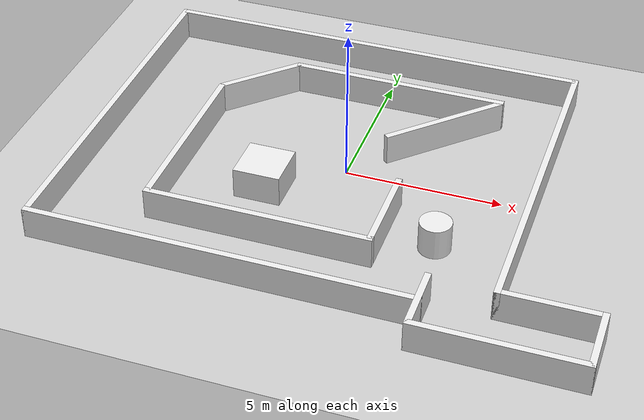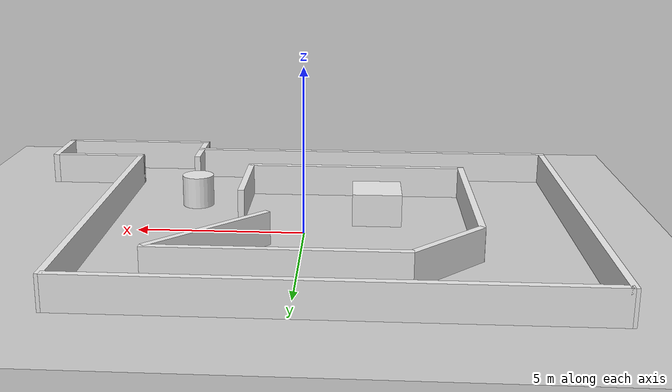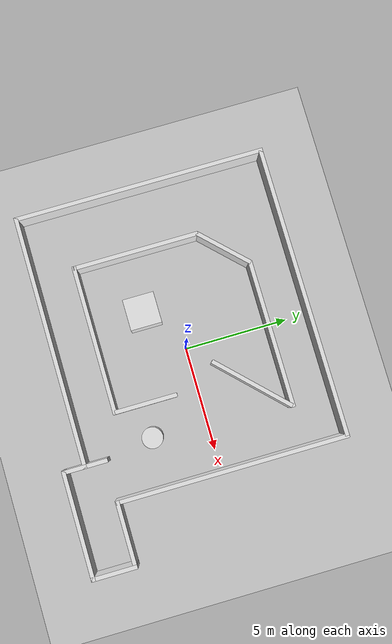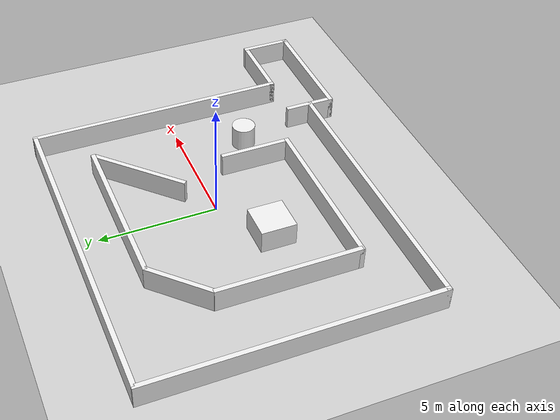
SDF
<sdf version="1.6">
 <world name="default">
  <scene><ambient>0.4 0.4 0.4 1</ambient><background>0.7 0.7 0.7 1</background><shadows>1</shadows></scene>
  <light name="sun" type="directional">
   <pose>0 0 10 0 -0 0</pose>
   <diffuse>0.8 0.8 0.8 1</diffuse>
   <specular>0.2 0.2 0.2 1</specular>
   <attenuation>
    <range>1000</range>
    <constant>0.9</constant>
    <linear>0.01</linear>
    <quadratic>0.001</quadratic>
   </attenuation>
   <direction>-0.5 0.1 -0.9</direction>
  </light>
  <model name="ground_plane">
   <static>1</static>
   <link name="link">
    <collision name="collision">
     <geometry><plane><normal>0 0 1</normal><size>100 100</size></plane></geometry>
     <surface>
      <contact><collide_bitmask>65535</collide_bitmask></contact>
      <friction><ode><mu>100</mu><mu2>50</mu2></ode></friction>
     </surface>
    </collision>
    <visual name="visual">
     <cast_shadows>0</cast_shadows>
     <geometry><plane><normal>0 0 1</normal><size>100 100</size></plane></geometry>
     <material>
      <script><uri>file://media/materials/scripts/gazebo.material</uri><name>Gazebo/Grey</name></script>
     </material>
    </visual>
   </link>
  </model>
  <physics name="default_physics" default="0" type="ode">
   <real_time_update_rate>1000</real_time_update_rate>
   <max_step_size>0.001</max_step_size>
   <real_time_factor>1</real_time_factor>
   <ode>
    <solver>
     <type>quick</type>
     <iters>150</iters>
     <precon_iters>0</precon_iters>
     <sor>1.4</sor>
     <use_dynamic_moi_rescaling>1</use_dynamic_moi_rescaling>
    </solver>
    <constraints>
     <cfm>1e-05</cfm>
     <erp>0.2</erp>
     <contact_max_correcting_vel>2000</contact_max_correcting_vel>
     <contact_surface_layer>0.01</contact_surface_layer>
    </constraints>
   </ode>
  </physics>
  <gravity>0 0 -9.8</gravity>
  <magnetic_field>6e-06 2.3e-05 -4.2e-05</magnetic_field>
  <atmosphere type="adiabatic"/>
  <spherical_coordinates>
   <surface_model>EARTH_WGS84</surface_model>
   <latitude_deg>0</latitude_deg>
   <longitude_deg>0</longitude_deg>
   <elevation>0</elevation>
   <heading_deg>0</heading_deg>
  </spherical_coordinates>
  <model name="unit_box">
   <pose>6 0.5 0.5 0 -0 0</pose>
   <link name="link">
    <inertial>
     <mass>1</mass>
     <inertia>
      <ixx>0.166667</ixx>
      <ixy>0</ixy>
      <ixz>0</ixz>
      <iyy>0.166667</iyy>
      <iyz>0</iyz>
      <izz>0.166667</izz>
     </inertia>
    </inertial>
    <collision name="collision"><geometry><box><size>0.2 11.2 1</size></box></geometry></collision>
    <visual name="visual">
     <geometry><box><size>0.2 11.2 1</size></box></geometry>
     <material>
      <script><name>Gazebo/White</name><uri>file://media/materials/scripts/gazebo.material</uri></script>
     </material>
    </visual>
   </link>
   <static>1</static>
  </model>
  <model name="unit_box_0">
   <pose>7.4 -5 0.5 0 -0 0</pose>
   <link name="link">
    <inertial>
     <mass>1</mass>
     <inertia>
      <ixx>0.166667</ixx>
      <ixy>0</ixy>
      <ixz>0</ixz>
      <iyy>0.166667</iyy>
      <iyz>0</iyz>
      <izz>0.166667</izz>
     </inertia>
    </inertial>
    <collision name="collision"><geometry><box><size>3 0.2 1</size></box></geometry></collision>
    <visual name="visual">
     <geometry><box><size>3 0.2 1</size></box></geometry>
     <material>
      <script><name>Gazebo/White</name><uri>file://media/materials/scripts/gazebo.material</uri></script>
     </material>
    </visual>
   </link>
   <static>1</static>
  </model>
  <model name="unit_box_1">
   <pose>9 -6 0.5 0 -0 0</pose>
   <link name="link">
    <inertial>
     <mass>1</mass>
     <inertia>
      <ixx>0.166667</ixx>
      <ixy>0</ixy>
      <ixz>0</ixz>
      <iyy>0.166667</iyy>
      <iyz>0</iyz>
      <izz>0.166667</izz>
     </inertia>
    </inertial>
    <collision name="collision"><geometry><box><size>0.2 2.2 1</size></box></geometry></collision>
    <visual name="visual">
     <geometry><box><size>0.2 2.2 1</size></box></geometry>
     <material>
      <script><name>Gazebo/White</name><uri>file://media/materials/scripts/gazebo.material</uri></script>
     </material>
    </visual>
   </link>
   <static>1</static>
  </model>
  <model name="unit_box_2">
   <pose>6.5 -7 0.5 0 -0 0</pose>
   <link name="link">
    <inertial>
     <mass>1</mass>
     <inertia>
      <ixx>0.166667</ixx>
      <ixy>0</ixy>
      <ixz>0</ixz>
      <iyy>0.166667</iyy>
      <iyz>0</iyz>
      <izz>0.166667</izz>
     </inertia>
    </inertial>
    <collision name="collision"><geometry><box><size>5.2 0.2 1</size></box></geometry></collision>
    <visual name="visual">
     <geometry><box><size>5.2 0.2 1</size></box></geometry>
     <material>
      <script><name>Gazebo/White</name><uri>file://media/materials/scripts/gazebo.material</uri></script>
     </material>
    </visual>
   </link>
   <static>1</static>
  </model>
  <model name="unit_box_3">
   <pose>4 -6 0.5 0 -0 0</pose>
   <link name="link">
    <inertial>
     <mass>1</mass>
     <inertia>
      <ixx>0.166667</ixx>
      <ixy>0</ixy>
      <ixz>0</ixz>
      <iyy>0.166667</iyy>
      <iyz>0</iyz>
      <izz>0.166667</izz>
     </inertia>
    </inertial>
    <collision name="collision"><geometry><box><size>0.2 2.2 1</size></box></geometry></collision>
    <visual name="visual">
     <geometry><box><size>0.2 2.2 1</size></box></geometry>
     <material>
      <script><name>Gazebo/White</name><uri>file://media/materials/scripts/gazebo.material</uri></script>
     </material>
    </visual>
   </link>
   <static>1</static>
  </model>
  <model name="unit_box_4">
   <pose>-2 -6 0.5 0 -0 0</pose>
   <link name="link">
    <inertial>
     <mass>1</mass>
     <inertia>
      <ixx>0.166667</ixx>
      <ixy>0</ixy>
      <ixz>0</ixz>
      <iyy>0.166667</iyy>
      <iyz>0</iyz>
      <izz>0.166667</izz>
     </inertia>
    </inertial>
    <collision name="collision"><geometry><box><size>12.2 0.2 1</size></box></geometry></collision>
    <visual name="visual">
     <geometry><box><size>12.2 0.2 1</size></box></geometry>
     <material>
      <script><name>Gazebo/White</name><uri>file://media/materials/scripts/gazebo.material</uri></script>
     </material>
    </visual>
   </link>
   <static>1</static>
  </model>
  <model name="unit_box_5">
   <pose>-8 0 0.5 0 -0 0</pose>
   <link name="link">
    <inertial>
     <mass>1</mass>
     <inertia>
      <ixx>0.166667</ixx>
      <ixy>0</ixy>
      <ixz>0</ixz>
      <iyy>0.166667</iyy>
      <iyz>0</iyz>
      <izz>0.166667</izz>
     </inertia>
    </inertial>
    <collision name="collision"><geometry><box><size>0.2 12.2 1</size></box></geometry></collision>
    <visual name="visual">
     <geometry><box><size>0.2 12.2 1</size></box></geometry>
     <material>
      <script><name>Gazebo/White</name><uri>file://media/materials/scripts/gazebo.material</uri></script>
     </material>
    </visual>
   </link>
   <static>1</static>
  </model>
  <model name="unit_box_6">
   <pose>-1 6 0.5 0 -0 0</pose>
   <link name="link">
    <inertial>
     <mass>1</mass>
     <inertia>
      <ixx>0.166667</ixx>
      <ixy>0</ixy>
      <ixz>0</ixz>
      <iyy>0.166667</iyy>
      <iyz>0</iyz>
      <izz>0.166667</izz>
     </inertia>
    </inertial>
    <collision name="collision"><geometry><box><size>14 0.2 1</size></box></geometry></collision>
    <visual name="visual">
     <geometry><box><size>14 0.2 1</size></box></geometry>
     <material>
      <script><name>Gazebo/White</name><uri>file://media/materials/scripts/gazebo.material</uri></script>
     </material>
    </visual>
   </link>
   <static>1</static>
  </model>
  <model name="unit_box_7">
   <pose>2.47357 2.47309 0.5 0 0 -0.787299</pose>
   <link name="link">
    <inertial>
     <mass>1</mass>
     <inertia>
      <ixx>0.166667</ixx>
      <ixy>0</ixy>
      <ixz>0</ixz>
      <iyy>0.166667</iyy>
      <iyz>0</iyz>
      <izz>0.166667</izz>
     </inertia>
    </inertial>
    <collision name="collision"><geometry><box><size>0.2 4.24264 1</size></box></geometry></collision>
    <visual name="visual">
     <geometry><box><size>0.2 4.24264 1</size></box></geometry>
     <material>
      <script><name>Gazebo/White</name><uri>file://media/materials/scripts/gazebo.material</uri></script>
     </material>
    </visual>
   </link>
   <static>1</static>
  </model>
  <model name="unit_box_8">
   <pose>0.5 4 0.5 0 -0 0</pose>
   <link name="link">
    <inertial>
     <mass>1</mass>
     <inertia>
      <ixx>0.166667</ixx>
      <ixy>0</ixy>
      <ixz>0</ixz>
      <iyy>0.166667</iyy>
      <iyz>0</iyz>
      <izz>0.166667</izz>
     </inertia>
    </inertial>
    <collision name="collision"><geometry><box><size>7.1 0.2 1</size></box></geometry></collision>
    <visual name="visual">
     <geometry><box><size>7.1 0.2 1</size></box></geometry>
     <material>
      <script><name>Gazebo/White</name><uri>file://media/materials/scripts/gazebo.material</uri></script>
     </material>
    </visual>
   </link>
   <static>1</static>
  </model>
  <model name="unit_box_9">
   <pose>-4.00058 2.99941 0.5 0 0 -0.781696</pose>
   <link name="link">
    <inertial>
     <mass>1</mass>
     <inertia>
      <ixx>0.166667</ixx>
      <ixy>0</ixy>
      <ixz>0</ixz>
      <iyy>0.166667</iyy>
      <iyz>0</iyz>
      <izz>0.166667</izz>
     </inertia>
    </inertial>
    <collision name="collision"><geometry><box><size>0.2 2.9 1</size></box></geometry></collision>
    <visual name="visual">
     <geometry><box><size>0.2 2.9 1</size></box></geometry>
     <material>
      <script><name>Gazebo/White</name><uri>file://media/materials/scripts/gazebo.material</uri></script>
     </material>
    </visual>
   </link>
   <static>1</static>
  </model>
  <model name="unit_box_10">
   <pose>2 -2.5 0.5 0 -0 0</pose>
   <link name="link">
    <inertial>
     <mass>1</mass>
     <inertia>
      <ixx>0.166667</ixx>
      <ixy>0</ixy>
      <ixz>0</ixz>
      <iyy>0.166667</iyy>
      <iyz>0</iyz>
      <izz>0.166667</izz>
     </inertia>
    </inertial>
    <collision name="collision"><geometry><box><size>0.2 3 1</size></box></geometry></collision>
    <visual name="visual">
     <geometry><box><size>0.2 3 1</size></box></geometry>
     <material>
      <script><name>Gazebo/White</name><uri>file://media/materials/scripts/gazebo.material</uri></script>
     </material>
    </visual>
   </link>
   <static>1</static>
  </model>
  <model name="unit_box_11">
   <pose>-1.5 -4 0.5 0 -0 0</pose>
   <link name="link">
    <inertial>
     <mass>1</mass>
     <inertia>
      <ixx>0.166667</ixx>
      <ixy>0</ixy>
      <ixz>0</ixz>
      <iyy>0.166667</iyy>
      <iyz>0</iyz>
      <izz>0.166667</izz>
     </inertia>
    </inertial>
    <collision name="collision"><geometry><box><size>7.2 0.2 1</size></box></geometry></collision>
    <visual name="visual">
     <geometry><box><size>7.2 0.2 1</size></box></geometry>
     <material>
      <script><name>Gazebo/White</name><uri>file://media/materials/scripts/gazebo.material</uri></script>
     </material>
    </visual>
   </link>
   <static>1</static>
  </model>
  <model name="unit_box_12">
   <pose>-5 -1 0.5 0 -0 0</pose>
   <link name="link">
    <inertial>
     <mass>1</mass>
     <inertia>
      <ixx>0.166667</ixx>
      <ixy>0</ixy>
      <ixz>0</ixz>
      <iyy>0.166667</iyy>
      <iyz>0</iyz>
      <izz>0.166667</izz>
     </inertia>
    </inertial>
    <collision name="collision"><geometry><box><size>0.2 6.07 1</size></box></geometry></collision>
    <visual name="visual">
     <geometry><box><size>0.2 6.07 1</size></box></geometry>
     <material>
      <script><name>Gazebo/White</name><uri>file://media/materials/scripts/gazebo.material</uri></script>
     </material>
    </visual>
   </link>
   <static>1</static>
  </model>
  <model name="unit_cylinder">
   <pose>3.59669 -2.64689 0.5 0 -0 0</pose>
   <link name="link">
    <inertial>
     <mass>1</mass>
     <inertia><ixx>0.145833</ixx><ixy>0</ixy><ixz>0</ixz><iyy>0.145833</iyy><iyz>0</iyz><izz>0.125</izz></inertia>
    </inertial>
    <collision name="collision">
     <geometry><cylinder><radius>0.5</radius><length>1</length></cylinder></geometry>
    </collision>
    <visual name="visual">
     <geometry><cylinder><radius>0.5</radius><length>1</length></cylinder></geometry>
     <material>
      <script><name>Gazebo/White</name><uri>file://media/materials/scripts/gazebo.material</uri></script>
     </material>
    </visual>
   </link>
   <static>1</static>
  </model>
  <model name="unit_box_13">
   <pose>-2.18497 -1.49493 0.5 0 -0 0</pose>
   <link name="link">
    <inertial>
     <mass>1</mass>
     <inertia>
      <ixx>0.166667</ixx>
      <ixy>0</ixy>
      <ixz>0</ixz>
      <iyy>0.166667</iyy>
      <iyz>0</iyz>
      <izz>0.166667</izz>
     </inertia>
    </inertial>
    <collision name="collision"><geometry><box><size>1.5 1.5 1</size></box></geometry></collision>
    <visual name="visual">
     <geometry><box><size>1.5 1.5 1</size></box></geometry>
     <material>
      <script><name>Gazebo/White</name><uri>file://media/materials/scripts/gazebo.material</uri></script>
     </material>
    </visual>
   </link>
   <static>1</static>
  </model>
 </world>
</sdf>
